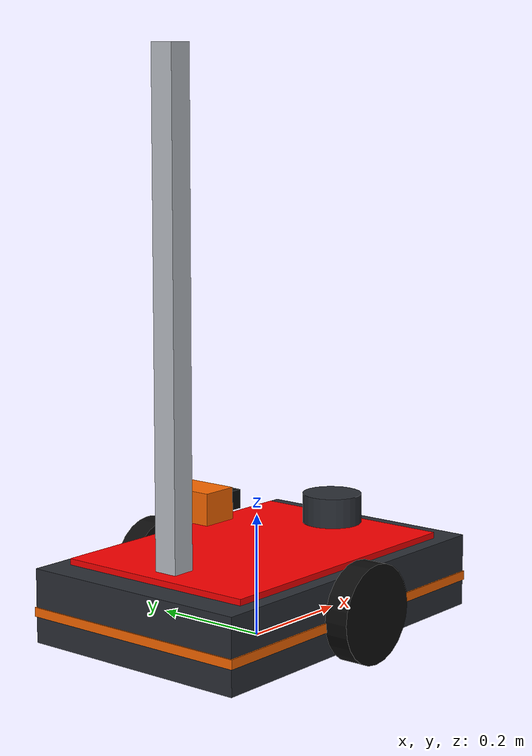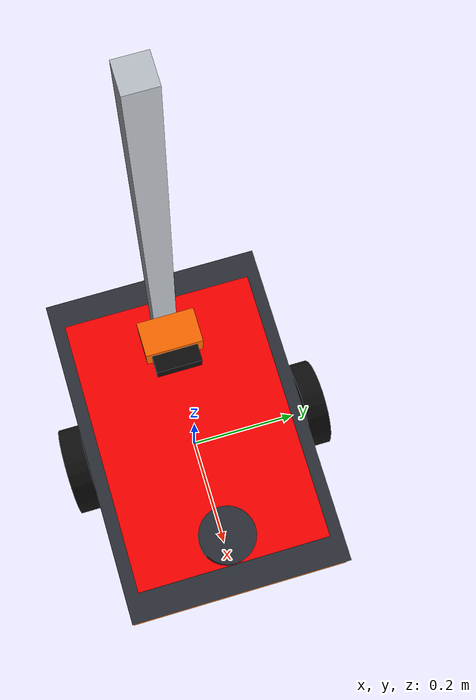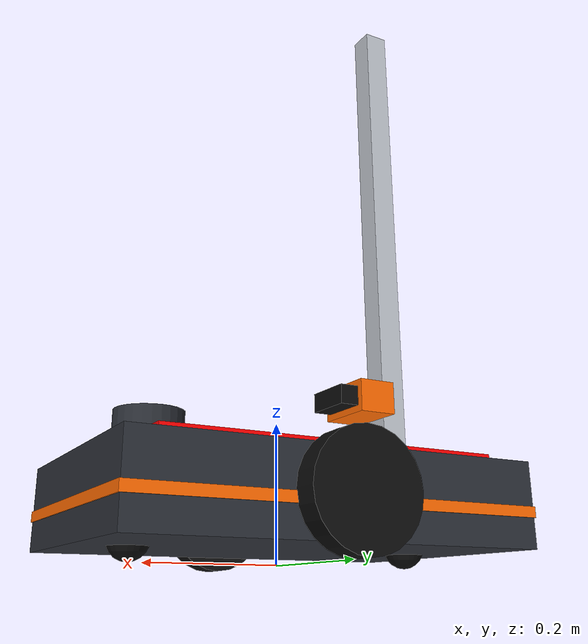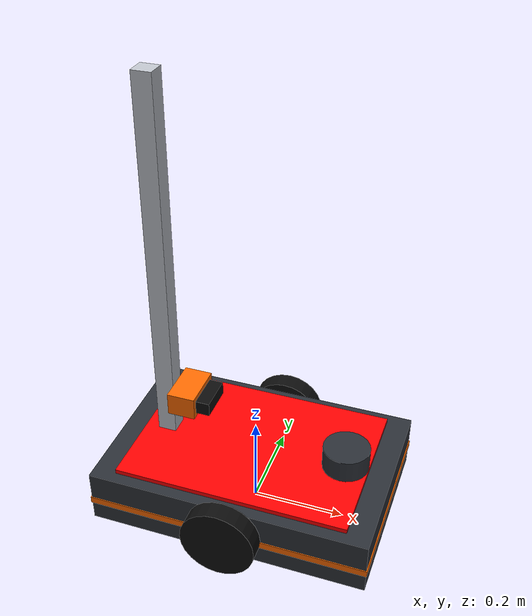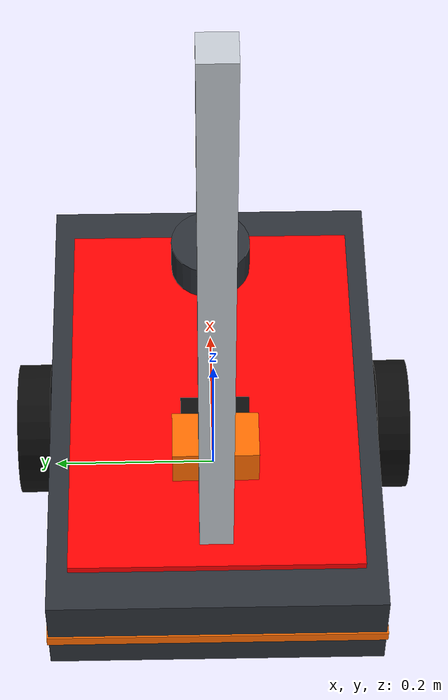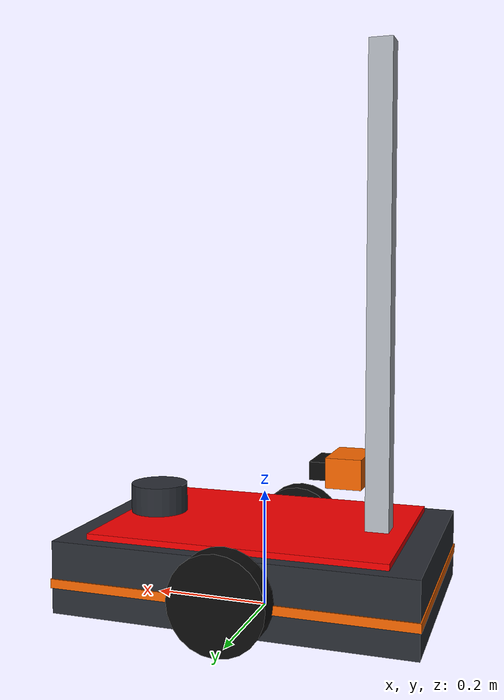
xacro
<?xml version="1.0"?>
<robot name="warehouse_robot" xmlns:xacro="http://www.ros.org/wiki/xacro">

  <xacro:include filename="$(find warehouse_description)/urdf/warehouse_gazebo.xacro"/>

  <!-- ===== Parameters (meters, kilograms) ===== -->
  <xacro:property name="chassis_x" value="0.60"/>
  <xacro:property name="chassis_y" value="0.40"/>
  <xacro:property name="chassis_z" value="0.12"/>
  <xacro:property name="chassis_mass" value="12.0"/>

  <xacro:property name="wheel_radius" value="0.08"/>
  <xacro:property name="wheel_width" value="0.04"/>
  <xacro:property name="wheel_separation" value="0.44"/>
  <xacro:property name="wheel_mass" value="0.8"/>

  <xacro:property name="caster_radius" value="0.03"/>
  <xacro:property name="caster_mass" value="0.2"/>

  <!-- ===== Colors ===== -->
  <material name="graphite"><color rgba="0.169 0.184 0.212 1.0"/></material>
  <material name="deck_grey"><color rgba="0.35 0.38 0.42 1.0"/></material>
  <material name="orange"><color rgba="1.0 0.416 0.0 1.0"/></material>
  <material name="tire_black"><color rgba="0.05 0.05 0.05 1.0"/></material>
  <material name="mast_grey"><color rgba=".75 0.77 0.80 1.0"/></material>

  <!-- ===== Inertia helpers ===== -->
  <xacro:macro name="box_inertia" params="m x y z">
    <inertia ixx="${m*(y*y+z*z)/12.0}" ixy="0" ixz="0"
             iyy="${m*(x*x+z*z)/12.0}" iyz="0"
             izz="${m*(x*x+y*y)/12.0}"/>
  </xacro:macro>

  <xacro:macro name="cylinder_inertia" params="m r h">
    <inertia ixx="${m*(3*r*r+h*h)/12.0}" ixy="0" ixz="0"
             iyy="${m*(3*r*r+h*h)/12.0}" iyz="0"
             izz="${m*r*r/2.0}"/>
  </xacro:macro>

  <xacro:macro name="sphere_inertia" params="m r">
    <inertia ixx="${2.0*m*r*r/5.0}" ixy="0" ixz="0"
             iyy="${2.0*m*r*r/5.0}" iyz="0"
             izz="${2.0*m*r*r/5.0}"/>
  </xacro:macro>

  <!-- ===== Base: footprint (on the floor) and chassis ===== -->
  <link name="base_footprint"/>

  <joint name="base_footprint_joint" type="fixed">
    <parent link="base_footprint"/>
    <child link="base_link"/>
    <origin xyz="0 0 ${wheel_radius}" rpy="0 0 0"/>
  </joint>

  <link name="base_link">
    <visual>
      <geometry><box size="${chassis_x} ${chassis_y} ${chassis_z}"/></geometry>
      <material name="graphite"/>
    </visual>
    <visual>
      <!-- orange accent stripe around the body -->
      <origin xyz="0 0 -0.01" rpy="0 0 0"/>
      <geometry><box size="${chassis_x+0.004} ${chassis_y+0.004} 0.015"/></geometry>
      <material name="orange"/>
    </visual>
    <visual>
      <!-- top deck -->
      <origin xyz="0 0 ${chassis_z/2+0.005}" rpy="0 0 0"/>
      <geometry><box size="0.50 0.35 0.01"/></geometry>
        <material name="deck_grey"><color rgba="1.0 0.0 0.0 1.0"/></material>
    </visual>
    <collision>
      <geometry><box size="${chassis_x} ${chassis_y} ${chassis_z}"/></geometry>
    </collision>
    <inertial>
      <mass value="${chassis_mass}"/>
      <xacro:box_inertia m="${chassis_mass}" x="${chassis_x}" y="${chassis_y}" z="${chassis_z}"/>
    </inertial>
  </link>

  <!-- ===== Drive wheels ===== -->
  <xacro:macro name="drive_wheel" params="name y">
    <link name="${name}_wheel_link">
      <visual>
        <geometry><cylinder radius="${wheel_radius}" length="${wheel_width}"/></geometry>
        <material name="tire_black"/>
      </visual>
      <collision>
        <geometry><cylinder radius="${wheel_radius}" length="${wheel_width}"/></geometry>
      </collision>
      <inertial>
        <mass value="${wheel_mass}"/>
        <xacro:cylinder_inertia m="${wheel_mass}" r="${wheel_radius}" h="${wheel_width}"/>
      </inertial>
    </link>
    <joint name="${name}_wheel_joint" type="continuous">
      <parent link="base_link"/>
      <child link="${name}_wheel_link"/>
      <origin xyz="0 ${y} 0" rpy="${-pi/2} 0 0"/>
      <axis xyz="0 0 1"/>
    </joint>
  </xacro:macro>

  <xacro:drive_wheel name="left" y="${wheel_separation/2}"/>
  <xacro:drive_wheel name="right" y="${-wheel_separation/2}"/>

  <!-- ===== Caster balls (front and back) ===== -->
  <xacro:macro name="caster" params="name x">
    <link name="${name}_caster_link">
      <visual>
        <geometry><sphere radius="${caster_radius}"/></geometry>
        <material name="tire_black"/>
      </visual>
      <collision>
        <geometry><sphere radius="${caster_radius}"/></geometry>
      </collision>
      <inertial>
        <mass value="${caster_mass}"/>
        <xacro:sphere_inertia m="${caster_mass}" r="${caster_radius}"/>
      </inertial>
    </link>
    <joint name="${name}_caster_joint" type="fixed">
      <parent link="base_link"/>
      <child link="${name}_caster_link"/>
      <origin xyz="${x} 0 ${-(wheel_radius-caster_radius)}" rpy="0 0 0"/>
    </joint>
  </xacro:macro>

  <xacro:caster name="front" x="0.22"/>
  <xacro:caster name="back" x="-0.22"/>

  <!-- Lidar Sensor -->
  <link name="lidar_link">
    <visual>
      <geometry>
        <cylinder radius="0.05" length="0.05"/>
      </geometry>
      <material name="graphite"/>
    </visual>
    <collision>
      <geometry>
        <cylinder radius="0.05" length="0.05"/>
      </geometry>
    </collision>
    <inertial>
      <origin xyz="0 0 0" rpy="0 0 0"/>
      <mass value="0.3"/>
      <xacro:cylinder_inertia m="0.3" r="0.05" h="0.05"/>
    </inertial>
  </link>

  <joint name="lidar_joint" type="fixed">
    <parent link="base_link"/>
    <child link="lidar_link"/>
    <origin xyz="0.20 0 0.095" rpy="0 0 0"/>
  </joint>

    <!-- Scanner mast -->
  <link name="mast_link">
    <visual>
      <geometry>
        <box size="0.04 0.04 0.80"/>
      </geometry>
      <material name="mast_grey"/>
    </visual>
    <collision>
      <geometry>
        <box size="0.04 0.04 0.80"/>
      </geometry>
    </collision>
    <inertial>
      <mass value="0.5"/>
      <xacro:box_inertia m="0.5" x="0.04" y="0.04" z="0.80"/>
    </inertial>
  </link>

  <joint name="mast_joint" type="fixed">
    <parent link="base_link"/>
    <child link="mast_link"/>
    <origin xyz="-0.20 0 0.47" rpy="0 0 0"/>
  </joint>

  <!-- Camera carriage -->
  <link name="camera_carriage_link">
    <visual>
      <geometry>
        <box size="0.06 0.10 0.05"/>
      </geometry>
      <material name="orange"/>
    </visual>
    <collision>
      <geometry>
        <box size="0.06 0.10 0.05"/>
      </geometry>
    </collision>
    <inertial>
      <mass value="0.2"/>
      <xacro:box_inertia m="0.2" x="0.06" y="0.10" z="0.05"/>
    </inertial>
  </link>
  <joint name="lift_joint" type="prismatic">
    <parent link="mast_link"/>
    <child link="camera_carriage_link"/>
    <origin xyz="0.05 0 -0.30" rpy="0 0 0"/>
    <axis xyz="0 0 1"/>
    <limit lower="0.0" upper="0.60" effort="100" velocity="0.2"/>
  </joint>

  <!-- Camera -->
  <link name="camera_link">
    <visual>
      <geometry>
        <box size="0.03 0.08 0.03"/>
      </geometry>
      <material name="tire_black"/>
    </visual>
    <collision>
      <geometry>
        <box size="0.03 0.08 0.03"/>
      </geometry>
    </collision>
    <inertial>
      <mass value="0.1"/>
      <xacro:box_inertia m="0.1" x="0.03" y="0.08" z="0.03"/>
    </inertial>
  </link>
  <joint name="camera_joint" type="fixed">
    <parent link="camera_carriage_link"/>
    <child link="camera_link"/>
    <origin xyz="0.045 0 0" rpy="0 0 0"/>
  </joint>

  <!-- IMU -->
  <link name="imu_link">
    <inertial>
      <mass value="0.01"/>
      <xacro:box_inertia m="0.01" x="0.02" y="0.02" z="0.02"/>
    </inertial>
  </link>
  <joint name="imu_joint" type="fixed">
    <parent link="base_link"/>
    <child link="imu_link"/>

  </joint>
</robot>
